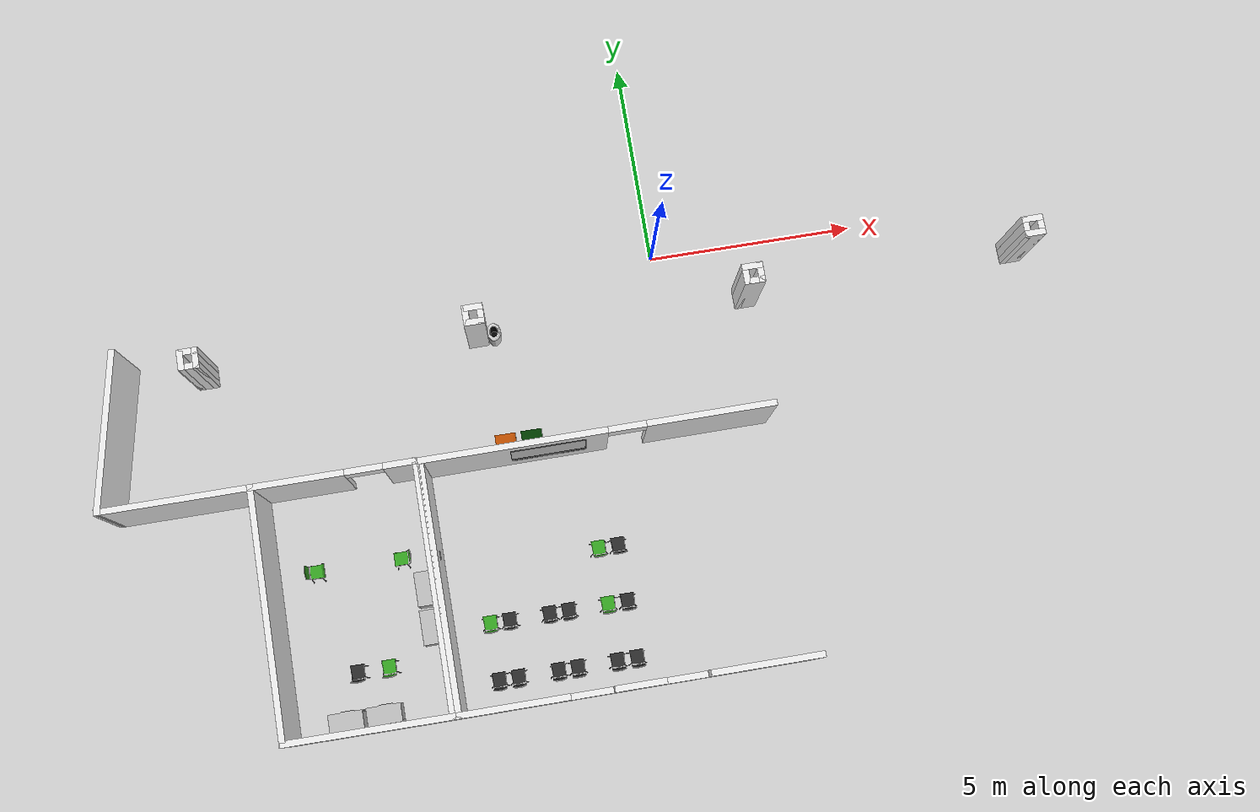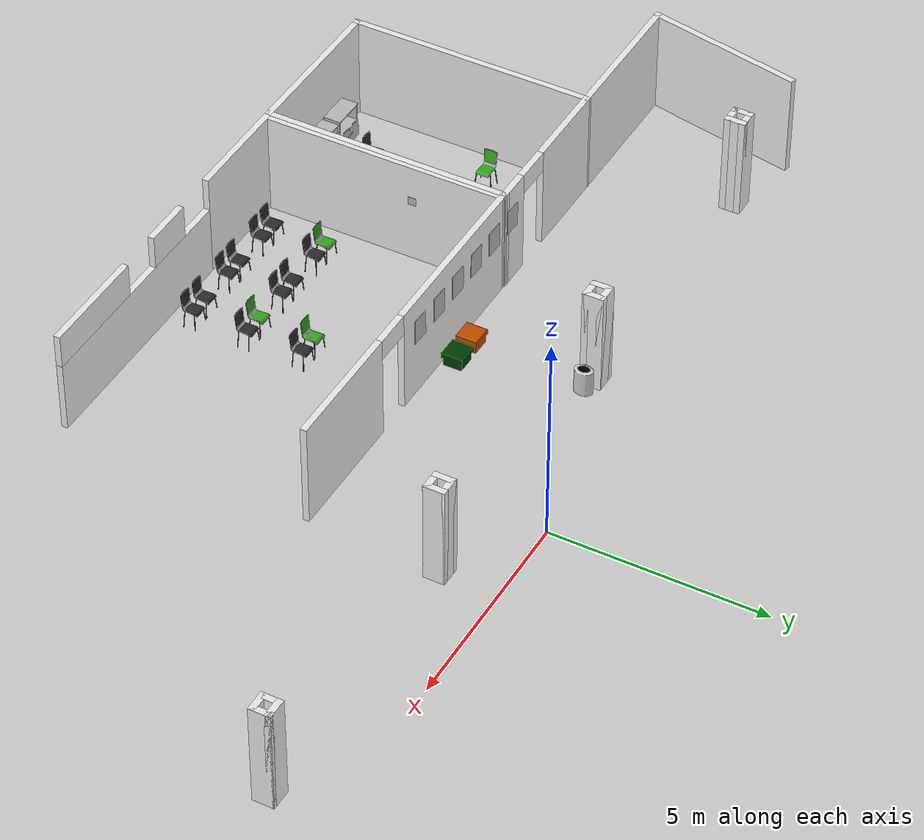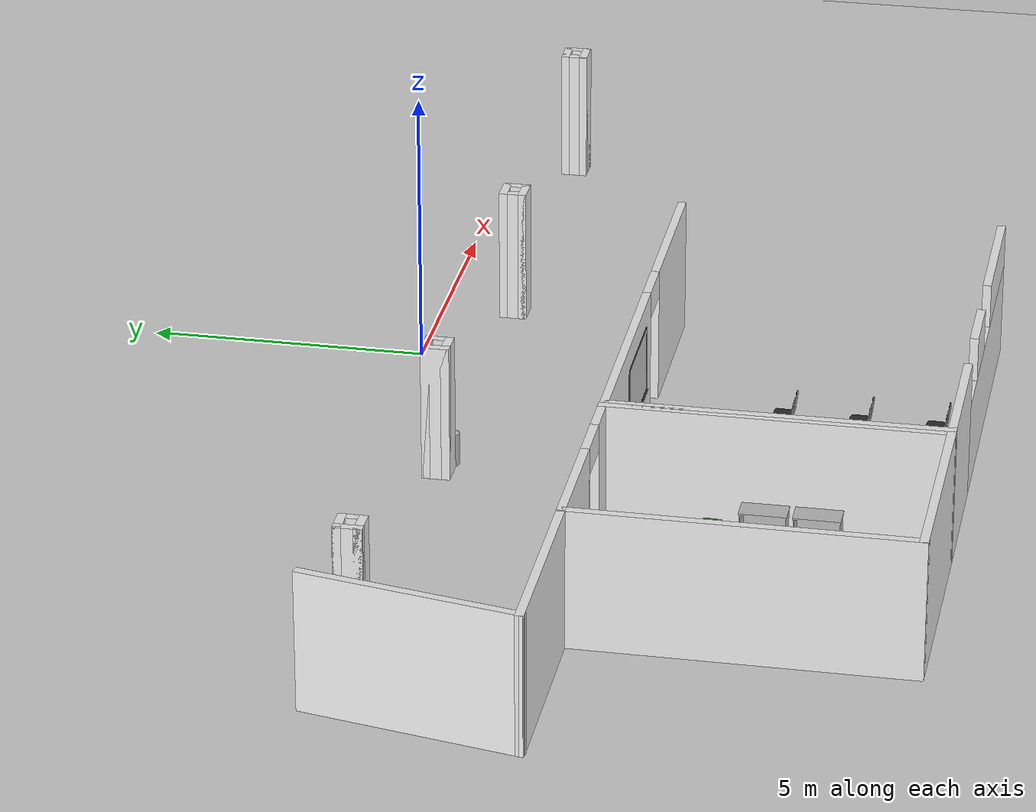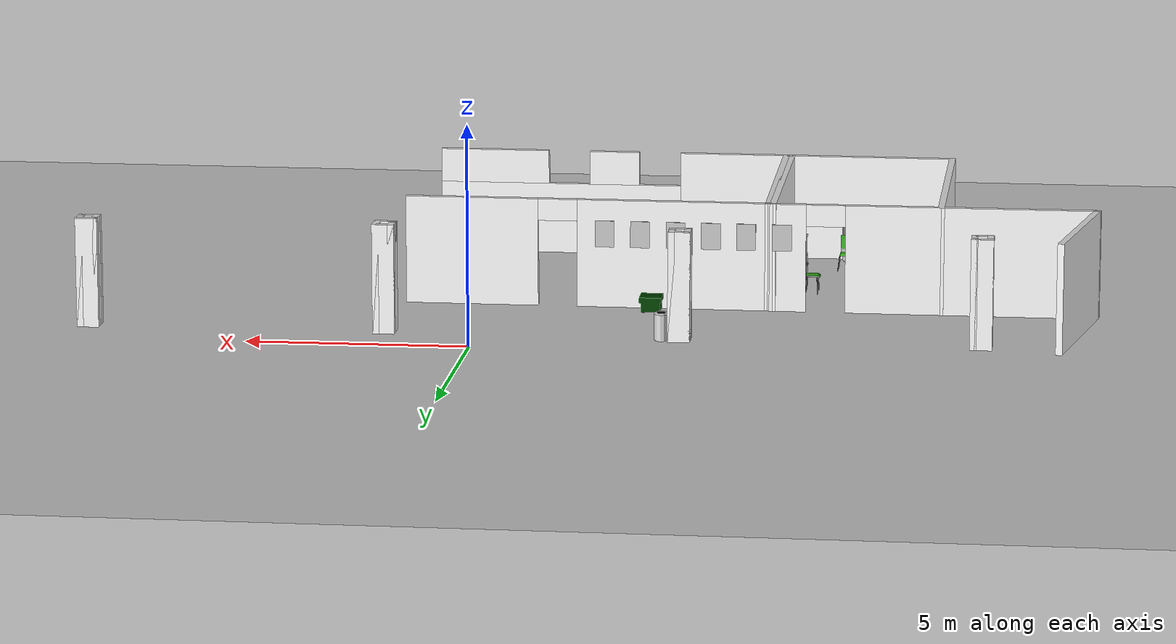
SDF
<sdf version="1.6">
 <world name="default">
  <model name="ground_plane">
   <static>1</static>
   <link name="link">
    <collision name="collision">
     <geometry><plane><normal>0 0 1</normal><size>100 100</size></plane></geometry>
     <surface><friction><ode><mu>100</mu><mu2>50</mu2></ode></friction></surface>
    </collision>
    <visual name="visual">
     <cast_shadows>0</cast_shadows>
     <geometry><plane><normal>0 0 1</normal><size>100 100</size></plane></geometry>
     <material>
      <script><uri>file://media/materials/scripts/gazebo.material</uri><name>Gazebo/Grey</name></script>
     </material>
    </visual>
   </link>
  </model>
  <model name="columns">
   <pose>-1.23086 -1.27462 0 0 -0 0</pose>
   <link name="Wall_337">
    <collision name="Wall_337_Collision">
     <geometry><box><size>0.5 0.15 2.5</size></box></geometry>
     <pose>0 0 1.25 0 -0 0</pose>
    </collision>
    <visual name="Wall_337_Visual">
     <pose>0 0 1.25 0 -0 0</pose>
     <geometry><box><size>0.5 0.15 2.5</size></box></geometry>
     <material>
      <script><uri>file://media/materials/scripts/gazebo.material</uri><name>Gazebo/White</name></script>
      <ambient>1 1 1 1</ambient>
     </material>
     <meta><layer>0</layer></meta>
    </visual>
    <pose>9.87053 0.009422 0 0 0 -1.5708</pose>
   </link>
   <link name="Wall_338">
    <collision name="Wall_338_Collision">
     <geometry><box><size>0.5 0.15 2.5</size></box></geometry>
     <pose>0 0 1.25 0 -0 0</pose>
    </collision>
    <visual name="Wall_338_Visual">
     <pose>0 0 1.25 0 -0 0</pose>
     <geometry><box><size>0.5 0.15 2.5</size></box></geometry>
     <material>
      <script><uri>file://media/materials/scripts/gazebo.material</uri><name>Gazebo/White</name></script>
      <ambient>1 1 1 1</ambient>
     </material>
     <meta><layer>0</layer></meta>
    </visual>
    <pose>10.0455 -0.165578 0 0 -0 0</pose>
   </link>
   <link name="Wall_339">
    <collision name="Wall_339_Collision">
     <geometry><box><size>0.5 0.15 2.5</size></box></geometry>
     <pose>0 0 1.25 0 -0 0</pose>
    </collision>
    <visual name="Wall_339_Visual">
     <pose>0 0 1.25 0 -0 0</pose>
     <geometry><box><size>0.5 0.15 2.5</size></box></geometry>
     <material>
      <script><uri>file://media/materials/scripts/gazebo.material</uri><name>Gazebo/White</name></script>
      <ambient>1 1 1 1</ambient>
     </material>
     <meta><layer>0</layer></meta>
    </visual>
    <pose>10.2205 0.009422 0 0 -0 1.5708</pose>
   </link>
   <link name="Wall_340">
    <collision name="Wall_340_Collision">
     <geometry><box><size>0.5 0.15 2.5</size></box></geometry>
     <pose>0 0 1.25 0 -0 0</pose>
    </collision>
    <visual name="Wall_340_Visual">
     <pose>0 0 1.25 0 -0 0</pose>
     <geometry><box><size>0.5 0.15 2.5</size></box></geometry>
     <material>
      <script><uri>file://media/materials/scripts/gazebo.material</uri><name>Gazebo/White</name></script>
      <ambient>1 1 1 1</ambient>
     </material>
     <meta><layer>0</layer></meta>
    </visual>
    <pose>10.0455 0.184422 0 0 -0 3.14159</pose>
   </link>
   <link name="Wall_342">
    <collision name="Wall_342_Collision">
     <geometry><box><size>0.5 0.15 2.5</size></box></geometry>
     <pose>0 0 1.25 0 -0 0</pose>
    </collision>
    <visual name="Wall_342_Visual">
     <pose>0 0 1.25 0 -0 0</pose>
     <geometry><box><size>0.5 0.15 2.5</size></box></geometry>
     <material>
      <script><uri>file://media/materials/scripts/gazebo.material</uri><name>Gazebo/White</name></script>
      <ambient>1 1 1 1</ambient>
     </material>
     <meta><layer>0</layer></meta>
    </visual>
    <pose>3.13524 -0.056002 0 0 0 -1.5708</pose>
   </link>
   <link name="Wall_343">
    <collision name="Wall_343_Collision">
     <geometry><box><size>0.5 0.15 2.5</size></box></geometry>
     <pose>0 0 1.25 0 -0 0</pose>
    </collision>
    <visual name="Wall_343_Visual">
     <pose>0 0 1.25 0 -0 0</pose>
     <geometry><box><size>0.5 0.15 2.5</size></box></geometry>
     <material>
      <script><uri>file://media/materials/scripts/gazebo.material</uri><name>Gazebo/White</name></script>
      <ambient>1 1 1 1</ambient>
     </material>
     <meta><layer>0</layer></meta>
    </visual>
    <pose>3.31024 -0.231003 0 0 -0 0</pose>
   </link>
   <link name="Wall_344">
    <collision name="Wall_344_Collision">
     <geometry><box><size>0.5 0.15 2.5</size></box></geometry>
     <pose>0 0 1.25 0 -0 0</pose>
    </collision>
    <visual name="Wall_344_Visual">
     <pose>0 0 1.25 0 -0 0</pose>
     <geometry><box><size>0.5 0.15 2.5</size></box></geometry>
     <material>
      <script><uri>file://media/materials/scripts/gazebo.material</uri><name>Gazebo/White</name></script>
      <ambient>1 1 1 1</ambient>
     </material>
     <meta><layer>0</layer></meta>
    </visual>
    <pose>3.48524 -0.056002 0 0 -0 1.5708</pose>
   </link>
   <link name="Wall_345">
    <collision name="Wall_345_Collision">
     <geometry><box><size>0.5 0.15 2.5</size></box></geometry>
     <pose>0 0 1.25 0 -0 0</pose>
    </collision>
    <visual name="Wall_345_Visual">
     <pose>0 0 1.25 0 -0 0</pose>
     <geometry><box><size>0.5 0.15 2.5</size></box></geometry>
     <material>
      <script><uri>file://media/materials/scripts/gazebo.material</uri><name>Gazebo/White</name></script>
      <ambient>1 1 1 1</ambient>
     </material>
     <meta><layer>0</layer></meta>
    </visual>
    <pose>3.31024 0.118997 0 0 -0 3.14159</pose>
   </link>
   <link name="Wall_350">
    <collision name="Wall_350_Collision">
     <geometry><box><size>0.5 0.15 2.5</size></box></geometry>
     <pose>0 0 1.25 0 -0 0</pose>
    </collision>
    <visual name="Wall_350_Visual">
     <pose>0 0 1.25 0 -0 0</pose>
     <geometry><box><size>0.5 0.15 2.5</size></box></geometry>
     <material>
      <script><uri>file://media/materials/scripts/gazebo.material</uri><name>Gazebo/White</name></script>
      <ambient>1 1 1 1</ambient>
     </material>
     <meta><layer>0</layer></meta>
    </visual>
    <pose>-3.34038 0.200077 0 0 -0 0</pose>
   </link>
   <link name="Wall_351">
    <collision name="Wall_351_Collision">
     <geometry><box><size>0.5 0.15 2.5</size></box></geometry>
     <pose>0 0 1.25 0 -0 0</pose>
    </collision>
    <visual name="Wall_351_Visual">
     <pose>0 0 1.25 0 -0 0</pose>
     <geometry><box><size>0.5 0.15 2.5</size></box></geometry>
     <material>
      <script><uri>file://media/materials/scripts/gazebo.material</uri><name>Gazebo/White</name></script>
      <ambient>1 1 1 1</ambient>
     </material>
     <meta><layer>0</layer></meta>
    </visual>
    <pose>-3.16538 0.025078 0 0 0 -1.5708</pose>
   </link>
   <link name="Wall_352">
    <collision name="Wall_352_Collision">
     <geometry><box><size>0.5 0.15 2.5</size></box></geometry>
     <pose>0 0 1.25 0 -0 0</pose>
    </collision>
    <visual name="Wall_352_Visual">
     <pose>0 0 1.25 0 -0 0</pose>
     <geometry><box><size>0.5 0.15 2.5</size></box></geometry>
     <material>
      <script><uri>file://media/materials/scripts/gazebo.material</uri><name>Gazebo/White</name></script>
      <ambient>1 1 1 1</ambient>
     </material>
     <meta><layer>0</layer></meta>
    </visual>
    <pose>-3.34038 -0.149923 0 0 -0 3.14159</pose>
   </link>
   <link name="Wall_353">
    <collision name="Wall_353_Collision">
     <geometry><box><size>0.5 0.15 2.5</size></box></geometry>
     <pose>0 0 1.25 0 -0 0</pose>
    </collision>
    <visual name="Wall_353_Visual">
     <pose>0 0 1.25 0 -0 0</pose>
     <geometry><box><size>0.5 0.15 2.5</size></box></geometry>
     <material>
      <script><uri>file://media/materials/scripts/gazebo.material</uri><name>Gazebo/White</name></script>
      <ambient>1 1 1 1</ambient>
     </material>
     <meta><layer>0</layer></meta>
    </visual>
    <pose>-3.51538 0.025078 0 0 -0 1.5708</pose>
   </link>
   <link name="Wall_355">
    <collision name="Wall_355_Collision">
     <geometry><box><size>0.5 0.15 2.5</size></box></geometry>
     <pose>0 0 1.25 0 -0 0</pose>
    </collision>
    <visual name="Wall_355_Visual">
     <pose>0 0 1.25 0 -0 0</pose>
     <geometry><box><size>0.5 0.15 2.5</size></box></geometry>
     <material>
      <script><uri>file://media/materials/scripts/gazebo.material</uri><name>Gazebo/White</name></script>
      <ambient>1 1 1 1</ambient>
     </material>
     <meta><layer>0</layer></meta>
    </visual>
    <pose>-10.2205 0.056002 0 0 0 -1.5708</pose>
   </link>
   <link name="Wall_356">
    <collision name="Wall_356_Collision">
     <geometry><box><size>0.5 0.15 2.5</size></box></geometry>
     <pose>0 0 1.25 0 -0 0</pose>
    </collision>
    <visual name="Wall_356_Visual">
     <pose>0 0 1.25 0 -0 0</pose>
     <geometry><box><size>0.5 0.15 2.5</size></box></geometry>
     <material>
      <script><uri>file://media/materials/scripts/gazebo.material</uri><name>Gazebo/White</name></script>
      <ambient>1 1 1 1</ambient>
     </material>
     <meta><layer>0</layer></meta>
    </visual>
    <pose>-10.0455 -0.118998 0 0 -0 0</pose>
   </link>
   <link name="Wall_357">
    <collision name="Wall_357_Collision">
     <geometry><box><size>0.5 0.15 2.5</size></box></geometry>
     <pose>0 0 1.25 0 -0 0</pose>
    </collision>
    <visual name="Wall_357_Visual">
     <pose>0 0 1.25 0 -0 0</pose>
     <geometry><box><size>0.5 0.15 2.5</size></box></geometry>
     <material>
      <script><uri>file://media/materials/scripts/gazebo.material</uri><name>Gazebo/White</name></script>
      <ambient>1 1 1 1</ambient>
     </material>
     <meta><layer>0</layer></meta>
    </visual>
    <pose>-9.87053 0.056002 0 0 -0 1.5708</pose>
   </link>
   <link name="Wall_358">
    <collision name="Wall_358_Collision">
     <geometry><box><size>0.5 0.15 2.5</size></box></geometry>
     <pose>0 0 1.25 0 -0 0</pose>
    </collision>
    <visual name="Wall_358_Visual">
     <pose>0 0 1.25 0 -0 0</pose>
     <geometry><box><size>0.5 0.15 2.5</size></box></geometry>
     <material>
      <script><uri>file://media/materials/scripts/gazebo.material</uri><name>Gazebo/White</name></script>
      <ambient>1 1 1 1</ambient>
     </material>
     <meta><layer>0</layer></meta>
    </visual>
    <pose>-10.0455 0.231003 0 0 -0 3.14159</pose>
   </link>
   <static>1</static>
  </model>
  <model name="ucu_basic_frame.world">
   <link name="Wall_187">
    <pose>-2.91004 -8.08571 0 0 0 -3.14</pose>
    <visual name="Wall_187_Visual_0">
     <pose>-2.67697 0 1.25 0 -0 0</pose>
     <geometry><box><size>3.06354 0.15 2.5</size></box></geometry>
     <material>
      <script><uri>file://media/materials/scripts/gazebo.material</uri><name>Gazebo/White</name></script>
      <ambient>1 1 1 1</ambient>
      <diffuse>1 1 1 1</diffuse>
      <specular>0 0 0 1</specular>
      <emissive>0 0 0 1</emissive>
     </material>
     <meta><layer>0</layer></meta>
    </visual>
    <visual name="Wall_187_Visual_2">
     <pose>-0.695201 0 2.25 0 -0 0</pose>
     <geometry><box><size>0.9 0.15 0.5</size></box></geometry>
     <material>
      <script><uri>file://media/materials/scripts/gazebo.material</uri><name>Gazebo/White</name></script>
      <ambient>1 1 1 1</ambient>
      <diffuse>1 1 1 1</diffuse>
      <specular>0 0 0 1</specular>
      <emissive>0 0 0 1</emissive>
     </material>
     <meta><layer>0</layer></meta>
    </visual>
    <visual name="Wall_187_Visual_1">
     <pose>1.98177 0 1.25 0 -0 0</pose>
     <geometry><box><size>4.45394 0.15 2.5</size></box></geometry>
     <material>
      <script><uri>file://media/materials/scripts/gazebo.material</uri><name>Gazebo/White</name></script>
      <ambient>1 1 1 1</ambient>
      <diffuse>1 1 1 1</diffuse>
      <specular>0 0 0 1</specular>
      <emissive>0 0 0 1</emissive>
     </material>
     <meta><layer>0</layer></meta>
    </visual>
    <collision name="Wall_187_Collision_0">
     <pose>-2.67697 0 1.25 0 -0 0</pose>
     <geometry><box><size>3.06354 0.15 2.5</size></box></geometry>
     <surface>
      <friction>
       <ode><mu>1</mu><mu2>1</mu2><fdir1>0 0 0</fdir1><slip1>0</slip1><slip2>0</slip2></ode>
       <torsional>
        <coefficient>1</coefficient>
        <patch_radius>0</patch_radius>
        <surface_radius>0</surface_radius>
        <use_patch_radius>1</use_patch_radius>
        <ode><slip>0</slip></ode>
       </torsional>
      </friction>
      <bounce><restitution_coefficient>0</restitution_coefficient><threshold>1e+06</threshold></bounce>
      <contact>
       <collide_without_contact>0</collide_without_contact>
       <collide_without_contact_bitmask>1</collide_without_contact_bitmask>
       <collide_bitmask>1</collide_bitmask>
       <ode>
        <soft_cfm>0</soft_cfm>
        <soft_erp>0.2</soft_erp>
        <kp>1e+13</kp>
        <kd>1</kd>
        <max_vel>0.01</max_vel>
        <min_depth>0</min_depth>
       </ode>
       <bullet>
        <split_impulse>1</split_impulse>
        <split_impulse_penetration_threshold>-0.01</split_impulse_penetration_threshold>
        <soft_cfm>0</soft_cfm>
        <soft_erp>0.2</soft_erp>
        <kp>1e+13</kp>
        <kd>1</kd>
       </bullet>
      </contact>
     </surface>
    </collision>
    <collision name="Wall_187_Collision_1">
     <pose>1.98177 0 1.25 0 -0 0</pose>
     <geometry><box><size>4.45394 0.15 2.5</size></box></geometry>
     <surface>
      <friction>
       <ode><mu>1</mu><mu2>1</mu2><fdir1>0 0 0</fdir1><slip1>0</slip1><slip2>0</slip2></ode>
       <torsional>
        <coefficient>1</coefficient>
        <patch_radius>0</patch_radius>
        <surface_radius>0</surface_radius>
        <use_patch_radius>1</use_patch_radius>
        <ode><slip>0</slip></ode>
       </torsional>
      </friction>
      <bounce><restitution_coefficient>0</restitution_coefficient><threshold>1e+06</threshold></bounce>
      <contact>
       <collide_without_contact>0</collide_without_contact>
       <collide_without_contact_bitmask>1</collide_without_contact_bitmask>
       <collide_bitmask>1</collide_bitmask>
       <ode>
        <soft_cfm>0</soft_cfm>
        <soft_erp>0.2</soft_erp>
        <kp>1e+13</kp>
        <kd>1</kd>
        <max_vel>0.01</max_vel>
        <min_depth>0</min_depth>
       </ode>
       <bullet>
        <split_impulse>1</split_impulse>
        <split_impulse_penetration_threshold>-0.01</split_impulse_penetration_threshold>
        <soft_cfm>0</soft_cfm>
        <soft_erp>0.2</soft_erp>
        <kp>1e+13</kp>
        <kd>1</kd>
       </bullet>
      </contact>
     </surface>
    </collision>
    <collision name="Wall_187_Collision_2">
     <pose>-0.695201 0 2.25 0 -0 0</pose>
     <geometry><box><size>0.9 0.15 0.5</size></box></geometry>
     <surface>
      <friction>
       <ode><mu>1</mu><mu2>1</mu2><fdir1>0 0 0</fdir1><slip1>0</slip1><slip2>0</slip2></ode>
       <torsional>
        <coefficient>1</coefficient>
        <patch_radius>0</patch_radius>
        <surface_radius>0</surface_radius>
        <use_patch_radius>1</use_patch_radius>
        <ode><slip>0</slip></ode>
       </torsional>
      </friction>
      <bounce><restitution_coefficient>0</restitution_coefficient><threshold>1e+06</threshold></bounce>
      <contact>
       <collide_without_contact>0</collide_without_contact>
       <collide_without_contact_bitmask>1</collide_without_contact_bitmask>
       <collide_bitmask>1</collide_bitmask>
       <ode>
        <soft_cfm>0</soft_cfm>
        <soft_erp>0.2</soft_erp>
        <kp>1e+13</kp>
        <kd>1</kd>
        <max_vel>0.01</max_vel>
        <min_depth>0</min_depth>
       </ode>
       <bullet>
        <split_impulse>1</split_impulse>
        <split_impulse_penetration_threshold>-0.01</split_impulse_penetration_threshold>
        <soft_cfm>0</soft_cfm>
        <soft_erp>0.2</soft_erp>
        <kp>1e+13</kp>
        <kd>1</kd>
       </bullet>
      </contact>
     </surface>
    </collision>
   </link>
   <link name="Wall_188">
    <pose>-7.05036 -11.0083 0 0 0 -1.56854</pose>
    <visual name="Wall_188_Visual">
     <pose>0 0 1.25 0 -0 0</pose>
     <geometry><box><size>5.98201 0.15 2.5</size></box></geometry>
     <material>
      <script><uri>file://media/materials/scripts/gazebo.material</uri><name>Gazebo/White</name></script>
      <ambient>0 1 0 1</ambient>
      <diffuse>1 1 1 1</diffuse>
      <specular>0 0 0 1</specular>
      <emissive>0 0 0 1</emissive>
     </material>
     <meta><layer>0</layer></meta>
    </visual>
    <collision name="Wall_188_Collision">
     <pose>0 0 1.25 0 -0 0</pose>
     <geometry><box><size>5.98201 0.15 2.5</size></box></geometry>
     <surface>
      <friction>
       <ode><mu>1</mu><mu2>1</mu2><fdir1>0 0 0</fdir1><slip1>0</slip1><slip2>0</slip2></ode>
       <torsional>
        <coefficient>1</coefficient>
        <patch_radius>0</patch_radius>
        <surface_radius>0</surface_radius>
        <use_patch_radius>1</use_patch_radius>
        <ode><slip>0</slip></ode>
       </torsional>
      </friction>
      <bounce><restitution_coefficient>0</restitution_coefficient><threshold>1e+06</threshold></bounce>
      <contact>
       <collide_without_contact>0</collide_without_contact>
       <collide_without_contact_bitmask>1</collide_without_contact_bitmask>
       <collide_bitmask>1</collide_bitmask>
       <ode>
        <soft_cfm>0</soft_cfm>
        <soft_erp>0.2</soft_erp>
        <kp>1e+13</kp>
        <kd>1</kd>
        <max_vel>0.01</max_vel>
        <min_depth>0</min_depth>
       </ode>
       <bullet>
        <split_impulse>1</split_impulse>
        <split_impulse_penetration_threshold>-0.01</split_impulse_penetration_threshold>
        <soft_cfm>0</soft_cfm>
        <soft_erp>0.2</soft_erp>
        <kp>1e+13</kp>
        <kd>1</kd>
       </bullet>
      </contact>
     </surface>
    </collision>
   </link>
   <link name="Wall_189">
    <pose>-2.90346 -13.9177 0 0 -0 0.00159</pose>
    <visual name="Wall_189_Visual_0">
     <pose>-2.9043 0 1.25 0 -0 0</pose>
     <geometry><box><size>2.62204 0.15 2.5</size></box></geometry>
     <material>
      <script><uri>file://media/materials/scripts/gazebo.material</uri><name>Gazebo/White</name></script>
      <ambient>1 1 1 1</ambient>
      <diffuse>1 1 1 1</diffuse>
      <specular>0 0 0 1</specular>
      <emissive>0 0 0 1</emissive>
     </material>
     <meta><layer>0</layer></meta>
    </visual>
    <visual name="Wall_189_Visual_1">
     <pose>1.31102 0 0.85 0 -0 0</pose>
     <geometry><box><size>5.8086 0.15 1.7</size></box></geometry>
     <material>
      <script><uri>file://media/materials/scripts/gazebo.material</uri><name>Gazebo/White</name></script>
      <ambient>1 1 1 1</ambient>
      <diffuse>1 1 1 1</diffuse>
      <specular>0 0 0 1</specular>
      <emissive>0 0 0 1</emissive>
     </material>
     <meta><layer>0</layer></meta>
    </visual>
    <visual name="Wall_189_Visual_2">
     <pose>0.003473 0 2.1 0 -0 0</pose>
     <geometry><box><size>1.19351 0.15 0.8</size></box></geometry>
     <material>
      <script><uri>file://media/materials/scripts/gazebo.material</uri><name>Gazebo/White</name></script>
      <ambient>1 1 1 1</ambient>
      <diffuse>1 1 1 1</diffuse>
      <specular>0 0 0 1</specular>
      <emissive>0 0 0 1</emissive>
     </material>
     <meta><layer>0</layer></meta>
    </visual>
    <visual name="Wall_189_Visual_3">
     <pose>2.90777 0 2.1 0 -0 0</pose>
     <geometry><box><size>2.6151 0.15 0.8</size></box></geometry>
     <material>
      <script><uri>file://media/materials/scripts/gazebo.material</uri><name>Gazebo/White</name></script>
      <ambient>1 1 1 1</ambient>
      <diffuse>1 1 1 1</diffuse>
      <specular>0 0 0 1</specular>
      <emissive>0 0 0 1</emissive>
     </material>
     <meta><layer>0</layer></meta>
    </visual>
    <collision name="Wall_189_Collision_0">
     <pose>-2.9043 0 1.25 0 -0 0</pose>
     <geometry><box><size>2.62204 0.15 2.5</size></box></geometry>
     <surface>
      <friction>
       <ode><mu>1</mu><mu2>1</mu2><fdir1>0 0 0</fdir1><slip1>0</slip1><slip2>0</slip2></ode>
       <torsional>
        <coefficient>1</coefficient>
        <patch_radius>0</patch_radius>
        <surface_radius>0</surface_radius>
        <use_patch_radius>1</use_patch_radius>
        <ode><slip>0</slip></ode>
       </torsional>
      </friction>
      <bounce><restitution_coefficient>0</restitution_coefficient><threshold>1e+06</threshold></bounce>
      <contact>
       <collide_without_contact>0</collide_without_contact>
       <collide_without_contact_bitmask>1</collide_without_contact_bitmask>
       <collide_bitmask>1</collide_bitmask>
       <ode>
        <soft_cfm>0</soft_cfm>
        <soft_erp>0.2</soft_erp>
        <kp>1e+13</kp>
        <kd>1</kd>
        <max_vel>0.01</max_vel>
        <min_depth>0</min_depth>
       </ode>
       <bullet>
        <split_impulse>1</split_impulse>
        <split_impulse_penetration_threshold>-0.01</split_impulse_penetration_threshold>
        <soft_cfm>0</soft_cfm>
        <soft_erp>0.2</soft_erp>
        <kp>1e+13</kp>
        <kd>1</kd>
       </bullet>
      </contact>
     </surface>
    </collision>
    <collision name="Wall_189_Collision_1">
     <pose>1.31102 0 0.85 0 -0 0</pose>
     <geometry><box><size>5.8086 0.15 1.7</size></box></geometry>
     <surface>
      <friction>
       <ode><mu>1</mu><mu2>1</mu2><fdir1>0 0 0</fdir1><slip1>0</slip1><slip2>0</slip2></ode>
       <torsional>
        <coefficient>1</coefficient>
        <patch_radius>0</patch_radius>
        <surface_radius>0</surface_radius>
        <use_patch_radius>1</use_patch_radius>
        <ode><slip>0</slip></ode>
       </torsional>
      </friction>
      <bounce><restitution_coefficient>0</restitution_coefficient><threshold>1e+06</threshold></bounce>
      <contact>
       <collide_without_contact>0</collide_without_contact>
       <collide_without_contact_bitmask>1</collide_without_contact_bitmask>
       <collide_bitmask>1</collide_bitmask>
       <ode>
        <soft_cfm>0</soft_cfm>
        <soft_erp>0.2</soft_erp>
        <kp>1e+13</kp>
        <kd>1</kd>
        <max_vel>0.01</max_vel>
        <min_depth>0</min_depth>
       </ode>
       <bullet>
        <split_impulse>1</split_impulse>
        <split_impulse_penetration_threshold>-0.01</split_impulse_penetration_threshold>
        <soft_cfm>0</soft_cfm>
        <soft_erp>0.2</soft_erp>
        <kp>1e+13</kp>
        <kd>1</kd>
       </bullet>
      </contact>
     </surface>
    </collision>
    <collision name="Wall_189_Collision_3">
     <pose>2.90777 0 2.1 0 -0 0</pose>
     <geometry><box><size>2.6151 0.15 0.8</size></box></geometry>
     <surface>
      <friction>
       <ode><mu>1</mu><mu2>1</mu2><fdir1>0 0 0</fdir1><slip1>0</slip1><slip2>0</slip2></ode>
       <torsional>
        <coefficient>1</coefficient>
        <patch_radius>0</patch_radius>
        <surface_radius>0</surface_radius>
        <use_patch_radius>1</use_patch_radius>
        <ode><slip>0</slip></ode>
       </torsional>
      </friction>
      <bounce><restitution_coefficient>0</restitution_coefficient><threshold>1e+06</threshold></bounce>
      <contact>
       <collide_without_contact>0</collide_without_contact>
       <collide_without_contact_bitmask>1</collide_without_contact_bitmask>
       <collide_bitmask>1</collide_bitmask>
       <ode>
        <soft_cfm>0</soft_cfm>
        <soft_erp>0.2</soft_erp>
        <kp>1e+13</kp>
        <kd>1</kd>
        <max_vel>0.01</max_vel>
        <min_depth>0</min_depth>
       </ode>
       <bullet>
        <split_impulse>1</split_impulse>
        <split_impulse_penetration_threshold>-0.01</split_impulse_penetration_threshold>
        <soft_cfm>0</soft_cfm>
        <soft_erp>0.2</soft_erp>
        <kp>1e+13</kp>
        <kd>1</kd>
       </bullet>
      </contact>
     </surface>
    </collision>
    <collision name="Wall_189_Collision_2">
     <pose>0.003473 0 2.1 0 -0 0</pose>
     <geometry><box><size>1.19351 0.15 0.8</size></box></geometry>
     <surface>
      <friction>
       <ode><mu>1</mu><mu2>1</mu2><fdir1>0 0 0</fdir1><slip1>0</slip1><slip2>0</slip2></ode>
       <torsional>
        <coefficient>1</coefficient>
        <patch_radius>0</patch_radius>
        <surface_radius>0</surface_radius>
        <use_patch_radius>1</use_patch_radius>
        <ode><slip>0</slip></ode>
       </torsional>
      </friction>
      <bounce><restitution_coefficient>0</restitution_coefficient><threshold>1e+06</threshold></bounce>
      <contact>
       <collide_without_contact>0</collide_without_contact>
       <collide_without_contact_bitmask>1</collide_without_contact_bitmask>
       <collide_bitmask>1</collide_bitmask>
       <ode>
        <soft_cfm>0</soft_cfm>
        <soft_erp>0.2</soft_erp>
        <kp>1e+13</kp>
        <kd>1</kd>
        <max_vel>0.01</max_vel>
        <min_depth>0</min_depth>
       </ode>
       <bullet>
        <split_impulse>1</split_impulse>
        <split_impulse_penetration_threshold>-0.01</split_impulse_penetration_threshold>
        <soft_cfm>0</soft_cfm>
        <soft_erp>0.2</soft_erp>
        <kp>1e+13</kp>
        <kd>1</kd>
       </bullet>
      </contact>
     </surface>
    </collision>
   </link>
   <link name="Wall_200">
    <pose>-7.1096 -8.08571 0 0 -0 3.01724</pose>
    <visual name="Wall_200_Visual">
     <pose>0 0 1.25 0 -0 0</pose>
     <geometry><box><size>0.256138 0.15 2.5</size></box></geometry>
     <material>
      <script><uri>file://media/materials/scripts/gazebo.material</uri><name>Gazebo/White</name></script>
      <ambient>1 1 1 1</ambient>
      <diffuse>1 1 1 1</diffuse>
      <specular>0 0 0 1</specular>
      <emissive>0 0 0 1</emissive>
     </material>
     <meta><layer>0</layer></meta>
    </visual>
    <collision name="Wall_200_Collision">
     <pose>0 0 1.25 0 -0 0</pose>
     <geometry><box><size>0.256138 0.15 2.5</size></box></geometry>
     <surface>
      <friction>
       <ode><mu>1</mu><mu2>1</mu2><fdir1>0 0 0</fdir1><slip1>0</slip1><slip2>0</slip2></ode>
       <torsional>
        <coefficient>1</coefficient>
        <patch_radius>0</patch_radius>
        <surface_radius>0</surface_radius>
        <use_patch_radius>1</use_patch_radius>
        <ode><slip>0</slip></ode>
       </torsional>
      </friction>
      <bounce><restitution_coefficient>0</restitution_coefficient><threshold>1e+06</threshold></bounce>
      <contact>
       <collide_without_contact>0</collide_without_contact>
       <collide_without_contact_bitmask>1</collide_without_contact_bitmask>
       <collide_bitmask>1</collide_bitmask>
       <ode>
        <soft_cfm>0</soft_cfm>
        <soft_erp>0.2</soft_erp>
        <kp>1e+13</kp>
        <kd>1</kd>
        <max_vel>0.01</max_vel>
        <min_depth>0</min_depth>
       </ode>
       <bullet>
        <split_impulse>1</split_impulse>
        <split_impulse_penetration_threshold>-0.01</split_impulse_penetration_threshold>
        <soft_cfm>0</soft_cfm>
        <soft_erp>0.2</soft_erp>
        <kp>1e+13</kp>
        <kd>1</kd>
       </bullet>
      </contact>
     </surface>
    </collision>
   </link>
   <link name="Wall_201">
    <pose>-7.16884 -11.0017 0 0 0 -1.57305</pose>
    <visual name="Wall_201_Visual">
     <pose>0 0 1.25 0 -0 0</pose>
     <geometry><box><size>5.99517 0.15 2.5</size></box></geometry>
     <material>
      <script><uri>file://media/materials/scripts/gazebo.material</uri><name>Gazebo/White</name></script>
      <ambient>1 1 1 1</ambient>
      <diffuse>1 1 1 1</diffuse>
      <specular>0 0 0 1</specular>
      <emissive>0 0 0 1</emissive>
     </material>
     <meta><layer>0</layer></meta>
    </visual>
    <collision name="Wall_201_Collision">
     <pose>0 0 1.25 0 -0 0</pose>
     <geometry><box><size>5.99517 0.15 2.5</size></box></geometry>
     <surface>
      <friction>
       <ode><mu>1</mu><mu2>1</mu2><fdir1>0 0 0</fdir1><slip1>0</slip1><slip2>0</slip2></ode>
       <torsional>
        <coefficient>1</coefficient>
        <patch_radius>0</patch_radius>
        <surface_radius>0</surface_radius>
        <use_patch_radius>1</use_patch_radius>
        <ode><slip>0</slip></ode>
       </torsional>
      </friction>
      <bounce><restitution_coefficient>0</restitution_coefficient><threshold>1e+06</threshold></bounce>
      <contact>
       <collide_without_contact>0</collide_without_contact>
       <collide_without_contact_bitmask>1</collide_without_contact_bitmask>
       <collide_bitmask>1</collide_bitmask>
       <ode>
        <soft_cfm>0</soft_cfm>
        <soft_erp>0.2</soft_erp>
        <kp>1e+13</kp>
        <kd>1</kd>
        <max_vel>0.01</max_vel>
        <min_depth>0</min_depth>
       </ode>
       <bullet>
        <split_impulse>1</split_impulse>
        <split_impulse_penetration_threshold>-0.01</split_impulse_penetration_threshold>
        <soft_cfm>0</soft_cfm>
        <soft_erp>0.2</soft_erp>
        <kp>1e+13</kp>
        <kd>1</kd>
       </bullet>
      </contact>
     </surface>
    </collision>
   </link>
   <link name="Wall_202">
    <pose>-9.0909 -13.9177 0 0 -0 3.13816</pose>
    <visual name="Wall_202_Visual">
     <pose>0 0 1.25 0 -0 0</pose>
     <geometry><box><size>3.98095 0.15 2.5</size></box></geometry>
     <material>
      <script><uri>file://media/materials/scripts/gazebo.material</uri><name>Gazebo/White</name></script>
      <ambient>1 1 1 1</ambient>
      <diffuse>1 1 1 1</diffuse>
      <specular>0 0 0 1</specular>
      <emissive>0 0 0 1</emissive>
     </material>
     <meta><layer>0</layer></meta>
    </visual>
    <collision name="Wall_202_Collision">
     <pose>0 0 1.25 0 -0 0</pose>
     <geometry><box><size>3.98095 0.15 2.5</size></box></geometry>
     <surface>
      <friction>
       <ode><mu>1</mu><mu2>1</mu2><fdir1>0 0 0</fdir1><slip1>0</slip1><slip2>0</slip2></ode>
       <torsional>
        <coefficient>1</coefficient>
        <patch_radius>0</patch_radius>
        <surface_radius>0</surface_radius>
        <use_patch_radius>1</use_patch_radius>
        <ode><slip>0</slip></ode>
       </torsional>
      </friction>
      <bounce><restitution_coefficient>0</restitution_coefficient><threshold>1e+06</threshold></bounce>
      <contact>
       <collide_without_contact>0</collide_without_contact>
       <collide_without_contact_bitmask>1</collide_without_contact_bitmask>
       <collide_bitmask>1</collide_bitmask>
       <ode>
        <soft_cfm>0</soft_cfm>
        <soft_erp>0.2</soft_erp>
        <kp>1e+13</kp>
        <kd>1</kd>
        <max_vel>0.01</max_vel>
        <min_depth>0</min_depth>
       </ode>
       <bullet>
        <split_impulse>1</split_impulse>
        <split_impulse_penetration_threshold>-0.01</split_impulse_penetration_threshold>
        <soft_cfm>0</soft_cfm>
        <soft_erp>0.2</soft_erp>
        <kp>1e+13</kp>
        <kd>1</kd>
       </bullet>
      </contact>
     </surface>
    </collision>
   </link>
   <link name="Wall_203">
    <pose>-11.0064 -10.9951 0 0 -0 1.56628</pose>
    <visual name="Wall_203_Visual">
     <pose>0 0 1.25 0 -0 0</pose>
     <geometry><box><size>5.98199 0.15 2.5</size></box></geometry>
     <material>
      <script><uri>file://media/materials/scripts/gazebo.material</uri><name>Gazebo/White</name></script>
      <ambient>1 1 1 1</ambient>
      <diffuse>1 1 1 1</diffuse>
      <specular>0 0 0 1</specular>
      <emissive>0 0 0 1</emissive>
     </material>
     <meta><layer>0</layer></meta>
    </visual>
    <collision name="Wall_203_Collision">
     <pose>0 0 1.25 0 -0 0</pose>
     <geometry><box><size>5.98199 0.15 2.5</size></box></geometry>
     <surface>
      <friction>
       <ode><mu>1</mu><mu2>1</mu2><fdir1>0 0 0</fdir1><slip1>0</slip1><slip2>0</slip2></ode>
       <torsional>
        <coefficient>1</coefficient>
        <patch_radius>0</patch_radius>
        <surface_radius>0</surface_radius>
        <use_patch_radius>1</use_patch_radius>
        <ode><slip>0</slip></ode>
       </torsional>
      </friction>
      <bounce><restitution_coefficient>0</restitution_coefficient><threshold>1e+06</threshold></bounce>
      <contact>
       <collide_without_contact>0</collide_without_contact>
       <collide_without_contact_bitmask>1</collide_without_contact_bitmask>
       <collide_bitmask>1</collide_bitmask>
       <ode>
        <soft_cfm>0</soft_cfm>
        <soft_erp>0.2</soft_erp>
        <kp>1e+13</kp>
        <kd>1</kd>
        <max_vel>0.01</max_vel>
        <min_depth>0</min_depth>
       </ode>
       <bullet>
        <split_impulse>1</split_impulse>
        <split_impulse_penetration_threshold>-0.01</split_impulse_penetration_threshold>
        <soft_cfm>0</soft_cfm>
        <soft_erp>0.2</soft_erp>
        <kp>1e+13</kp>
        <kd>1</kd>
       </bullet>
      </contact>
     </surface>
    </collision>
   </link>
   <link name="Wall_204">
    <pose>-9.07773 -8.07913 0 0 -0 0</pose>
    <visual name="Wall_204_Visual_0">
     <pose>-0.86786 0 1.25 0 -0 0</pose>
     <geometry><box><size>2.24559 0.15 2.5</size></box></geometry>
     <material>
      <script><uri>file://media/materials/scripts/gazebo.material</uri><name>Gazebo/White</name></script>
      <ambient>1 1 1 1</ambient>
      <diffuse>1 1 1 1</diffuse>
      <specular>0 0 0 1</specular>
      <emissive>0 0 0 1</emissive>
     </material>
     <meta><layer>0</layer></meta>
    </visual>
    <visual name="Wall_204_Visual_1">
     <pose>1.57279 0 1.25 0 -0 0</pose>
     <geometry><box><size>0.835719 0.15 2.5</size></box></geometry>
     <material>
      <script><uri>file://media/materials/scripts/gazebo.material</uri><name>Gazebo/White</name></script>
      <ambient>1 1 1 1</ambient>
      <diffuse>1 1 1 1</diffuse>
      <specular>0 0 0 1</specular>
      <emissive>0 0 0 1</emissive>
     </material>
     <meta><layer>0</layer></meta>
    </visual>
    <visual name="Wall_204_Visual_2">
     <pose>0.704935 0 2.25 0 -0 0</pose>
     <geometry><box><size>0.9 0.15 0.5</size></box></geometry>
     <material>
      <script><uri>file://media/materials/scripts/gazebo.material</uri><name>Gazebo/White</name></script>
      <ambient>1 1 1 1</ambient>
      <diffuse>1 1 1 1</diffuse>
      <specular>0 0 0 1</specular>
      <emissive>0 0 0 1</emissive>
     </material>
     <meta><layer>0</layer></meta>
    </visual>
    <collision name="Wall_204_Collision_0">
     <pose>-0.86786 0 1.25 0 -0 0</pose>
     <geometry><box><size>2.24559 0.15 2.5</size></box></geometry>
     <surface>
      <friction>
       <ode><mu>1</mu><mu2>1</mu2><fdir1>0 0 0</fdir1><slip1>0</slip1><slip2>0</slip2></ode>
       <torsional>
        <coefficient>1</coefficient>
        <patch_radius>0</patch_radius>
        <surface_radius>0</surface_radius>
        <use_patch_radius>1</use_patch_radius>
        <ode><slip>0</slip></ode>
       </torsional>
      </friction>
      <bounce><restitution_coefficient>0</restitution_coefficient><threshold>1e+06</threshold></bounce>
      <contact>
       <collide_without_contact>0</collide_without_contact>
       <collide_without_contact_bitmask>1</collide_without_contact_bitmask>
       <collide_bitmask>1</collide_bitmask>
       <ode>
        <soft_cfm>0</soft_cfm>
        <soft_erp>0.2</soft_erp>
        <kp>1e+13</kp>
        <kd>1</kd>
        <max_vel>0.01</max_vel>
        <min_depth>0</min_depth>
       </ode>
       <bullet>
        <split_impulse>1</split_impulse>
        <split_impulse_penetration_threshold>-0.01</split_impulse_penetration_threshold>
        <soft_cfm>0</soft_cfm>
        <soft_erp>0.2</soft_erp>
        <kp>1e+13</kp>
        <kd>1</kd>
       </bullet>
      </contact>
     </surface>
    </collision>
    <collision name="Wall_204_Collision_1">
     <pose>1.57279 0 1.25 0 -0 0</pose>
     <geometry><box><size>0.835719 0.15 2.5</size></box></geometry>
     <surface>
      <friction>
       <ode><mu>1</mu><mu2>1</mu2><fdir1>0 0 0</fdir1><slip1>0</slip1><slip2>0</slip2></ode>
       <torsional>
        <coefficient>1</coefficient>
        <patch_radius>0</patch_radius>
        <surface_radius>0</surface_radius>
        <use_patch_radius>1</use_patch_radius>
        <ode><slip>0</slip></ode>
       </torsional>
      </friction>
      <bounce><restitution_coefficient>0</restitution_coefficient><threshold>1e+06</threshold></bounce>
      <contact>
       <collide_without_contact>0</collide_without_contact>
       <collide_without_contact_bitmask>1</collide_without_contact_bitmask>
       <collide_bitmask>1</collide_bitmask>
       <ode>
        <soft_cfm>0</soft_cfm>
        <soft_erp>0.2</soft_erp>
        <kp>1e+13</kp>
        <kd>1</kd>
        <max_vel>0.01</max_vel>
        <min_depth>0</min_depth>
       </ode>
       <bullet>
        <split_impulse>1</split_impulse>
        <split_impulse_penetration_threshold>-0.01</split_impulse_penetration_threshold>
        <soft_cfm>0</soft_cfm>
        <soft_erp>0.2</soft_erp>
        <kp>1e+13</kp>
        <kd>1</kd>
       </bullet>
      </contact>
     </surface>
    </collision>
    <collision name="Wall_204_Collision_2">
     <pose>0.704935 0 2.25 0 -0 0</pose>
     <geometry><box><size>0.9 0.15 0.5</size></box></geometry>
     <surface>
      <friction>
       <ode><mu>1</mu><mu2>1</mu2><fdir1>0 0 0</fdir1><slip1>0</slip1><slip2>0</slip2></ode>
       <torsional>
        <coefficient>1</coefficient>
        <patch_radius>0</patch_radius>
        <surface_radius>0</surface_radius>
        <use_patch_radius>1</use_patch_radius>
        <ode><slip>0</slip></ode>
       </torsional>
      </friction>
      <bounce><restitution_coefficient>0</restitution_coefficient><threshold>1e+06</threshold></bounce>
      <contact>
       <collide_without_contact>0</collide_without_contact>
       <collide_without_contact_bitmask>1</collide_without_contact_bitmask>
       <collide_bitmask>1</collide_bitmask>
       <ode>
        <soft_cfm>0</soft_cfm>
        <soft_erp>0.2</soft_erp>
        <kp>1e+13</kp>
        <kd>1</kd>
        <max_vel>0.01</max_vel>
        <min_depth>0</min_depth>
       </ode>
       <bullet>
        <split_impulse>1</split_impulse>
        <split_impulse_penetration_threshold>-0.01</split_impulse_penetration_threshold>
        <soft_cfm>0</soft_cfm>
        <soft_erp>0.2</soft_erp>
        <kp>1e+13</kp>
        <kd>1</kd>
       </bullet>
      </contact>
     </surface>
    </collision>
   </link>
   <link name="Wall_211">
    <pose>-12.7573 -8.07913 0 0 -0 3.14159</pose>
    <visual name="Wall_211_Visual">
     <pose>0 0 1.25 0 -0 0</pose>
     <geometry><box><size>3.67855 0.15 2.5</size></box></geometry>
     <material>
      <script><uri>file://media/materials/scripts/gazebo.material</uri><name>Gazebo/White</name></script>
      <ambient>1 1 1 1</ambient>
      <diffuse>1 1 1 1</diffuse>
      <specular>0 0 0 1</specular>
      <emissive>0 0 0 1</emissive>
     </material>
     <meta><layer>0</layer></meta>
    </visual>
    <collision name="Wall_211_Collision">
     <pose>0 0 1.25 0 -0 0</pose>
     <geometry><box><size>3.67855 0.15 2.5</size></box></geometry>
     <surface>
      <friction>
       <ode><mu>1</mu><mu2>1</mu2><fdir1>0 0 0</fdir1><slip1>0</slip1><slip2>0</slip2></ode>
       <torsional>
        <coefficient>1</coefficient>
        <patch_radius>0</patch_radius>
        <surface_radius>0</surface_radius>
        <use_patch_radius>1</use_patch_radius>
        <ode><slip>0</slip></ode>
       </torsional>
      </friction>
      <bounce><restitution_coefficient>0</restitution_coefficient><threshold>1e+06</threshold></bounce>
      <contact>
       <collide_without_contact>0</collide_without_contact>
       <collide_without_contact_bitmask>1</collide_without_contact_bitmask>
       <collide_bitmask>1</collide_bitmask>
       <ode>
        <soft_cfm>0</soft_cfm>
        <soft_erp>0.2</soft_erp>
        <kp>1e+13</kp>
        <kd>1</kd>
        <max_vel>0.01</max_vel>
        <min_depth>0</min_depth>
       </ode>
       <bullet>
        <split_impulse>1</split_impulse>
        <split_impulse_penetration_threshold>-0.01</split_impulse_penetration_threshold>
        <soft_cfm>0</soft_cfm>
        <soft_erp>0.2</soft_erp>
        <kp>1e+13</kp>
        <kd>1</kd>
       </bullet>
      </contact>
     </surface>
    </collision>
   </link>
   <link name="Wall_215">
    <pose>-14.1457 -6.25128 0 0 -0 1.36809</pose>
    <visual name="Wall_215_Visual">
     <pose>0 0 1.25 0 -0 0</pose>
     <geometry><box><size>3.88211 0.15 2.5</size></box></geometry>
     <material>
      <script><uri>file://media/materials/scripts/gazebo.material</uri><name>Gazebo/White</name></script>
      <ambient>1 1 1 1</ambient>
      <diffuse>1 1 1 1</diffuse>
      <specular>0 0 0 1</specular>
      <emissive>0 0 0 1</emissive>
     </material>
     <meta><layer>0</layer></meta>
    </visual>
    <collision name="Wall_215_Collision">
     <pose>0 0 1.25 0 -0 0</pose>
     <geometry><box><size>3.88211 0.15 2.5</size></box></geometry>
     <surface>
      <friction>
       <ode><mu>1</mu><mu2>1</mu2><fdir1>0 0 0</fdir1><slip1>0</slip1><slip2>0</slip2></ode>
       <torsional>
        <coefficient>1</coefficient>
        <patch_radius>0</patch_radius>
        <surface_radius>0</surface_radius>
        <use_patch_radius>1</use_patch_radius>
        <ode><slip>0</slip></ode>
       </torsional>
      </friction>
      <bounce><restitution_coefficient>0</restitution_coefficient><threshold>1e+06</threshold></bounce>
      <contact>
       <collide_without_contact>0</collide_without_contact>
       <collide_without_contact_bitmask>1</collide_without_contact_bitmask>
       <collide_bitmask>1</collide_bitmask>
       <ode>
        <soft_cfm>0</soft_cfm>
        <soft_erp>0.2</soft_erp>
        <kp>1e+13</kp>
        <kd>1</kd>
        <max_vel>0.01</max_vel>
        <min_depth>0</min_depth>
       </ode>
       <bullet>
        <split_impulse>1</split_impulse>
        <split_impulse_penetration_threshold>-0.01</split_impulse_penetration_threshold>
        <soft_cfm>0</soft_cfm>
        <soft_erp>0.2</soft_erp>
        <kp>1e+13</kp>
        <kd>1</kd>
       </bullet>
      </contact>
     </surface>
    </collision>
   </link>
   <static>1</static>
   <pose>0.7577 3.6363 0 0 -0 0</pose>
  </model>
  <include>
   <uri>model://robert_gazebo/models/locker_008</uri>
   <name>locker_009_1</name>
   <pose>-6.71 -7.24 0.45 0 0 -1.57</pose>
  </include>
  <include>
   <uri>model://robert_gazebo/models/locker_008</uri>
   <name>locker_009_2</name>
   <pose>-6.71 -8.15 0.45 0 0 -1.57</pose>
  </include>
  <include>
   <uri>model://robert_gazebo/models/locker_008</uri>
   <name>locker_009_3</name>
   <pose>-8.98 -10 0.45 0 0 -3.14</pose>
  </include>
  <include>
   <uri>model://robert_gazebo/models/locker_008</uri>
   <name>locker_009_4</name>
   <pose>-8.08 -9.985 0.45 0 0 -3.14</pose>
  </include>
  <include>
   <uri>model://robert_gazebo/models/pictures/p9_adrian_slywotzky</uri>
   <name>p9_adrian_slywotzky</name>
   <pose>-2.55 -4.35 1.72 0 0 -0.02</pose>
  </include>
  <include>
   <uri>model://robert_gazebo/models/pictures/p10_bohdan_hawrylyshyn</uri>
   <name>p10_bohdan_hawrylyshyn</name>
   <pose>-3.36 -4.35 1.72 0 0 -0.02</pose>
  </include>
  <include>
   <uri>model://robert_gazebo/models/pictures/p11_sheryl_sandberg</uri>
   <name>p11_sheryl_sandberg</name>
   <pose>-4.18 -4.35 1.72 0 0 -0.02</pose>
  </include>
  <include>
   <uri>model://robert_gazebo/models/pictures/p12_donald_knuth</uri>
   <name>p12_donald_knuth</name>
   <pose>-4.99 -4.35 1.72 0 0 -0.02</pose>
  </include>
  <include>
   <uri>model://robert_gazebo/models/pictures/p13_borys_gudziak</uri>
   <name>p13_borys_gudziak</name>
   <pose>-5.8 -4.35 1.72 0 0 -0.02</pose>
  </include>
  <include>
   <uri>model://robert_gazebo/models/pictures/p14_oscar_wilde</uri>
   <name>p14_oscar_wilde</name>
   <pose>-6.62 -4.35 1.72 0 0 -0.02</pose>
  </include>
  <include>
   <uri>model://robert_gazebo/models/dump</uri>
   <name>dump_2</name>
   <pose>-4.16 -1.32 0.28 0 0 -1.57</pose>
  </include>
  <include>
   <uri>model://robert_gazebo/models/puffy/green</uri>
   <name>puffy_green_2</name>
   <pose>-3.65 -4.07 0.2 0 0 0</pose>
  </include>
  <include>
   <uri>model://robert_gazebo/models/puffy/orange</uri>
   <name>puffy_orange_2</name>
   <pose>-4.29 -4.07 0.2 0 0 0</pose>
  </include>
  <include>
   <uri>model://robert_gazebo/models/classroom_chair_grey</uri>
   <name>classroom_chair_008_1_2_1</name>
   <pose>-2.03 -6.94 0.445 0 0 3.14</pose>
  </include>
  <include>
   <uri>model://robert_gazebo/models/classroom_chair_green</uri>
   <name>classroom_chair_008_1_2_2</name>
   <pose>-2.5 -6.94 0.445 0 0 3.14</pose>
  </include>
  <include>
   <uri>model://robert_gazebo/models/classroom_chair_grey</uri>
   <name>classroom_chair_008_2_3_1</name>
   <pose>-2.03 -8.29 0.445 0 0 3.14</pose>
  </include>
  <include>
   <uri>model://robert_gazebo/models/classroom_chair_green</uri>
   <name>classroom_chair_008_2_3_2</name>
   <pose>-2.5 -8.29 0.445 0 0 3.14</pose>
  </include>
  <include>
   <uri>model://robert_gazebo/models/classroom_chair_grey</uri>
   <name>classroom_chair_008_2_4_1</name>
   <pose>-3.45 -8.29 0.445 0 0 3.14</pose>
  </include>
  <include>
   <uri>model://robert_gazebo/models/classroom_chair_grey</uri>
   <name>classroom_chair_008_2_4_2</name>
   <pose>-3.91 -8.29 0.445 0 0 3.14</pose>
  </include>
  <include>
   <uri>model://robert_gazebo/models/classroom_chair_grey</uri>
   <name>classroom_chair_008_2_5_1</name>
   <pose>-4.87 -8.29 0.445 0 0 3.14</pose>
  </include>
  <include>
   <uri>model://robert_gazebo/models/classroom_chair_green</uri>
   <name>classroom_chair_008_2_5_2</name>
   <pose>-5.33 -8.29 0.445 0 0 3.14</pose>
  </include>
  <include>
   <uri>model://robert_gazebo/models/classroom_chair_grey</uri>
   <name>classroom_chair_008_3_3_1</name>
   <pose>-2.03 -9.64 0.445 0 0 3.14</pose>
  </include>
  <include>
   <uri>model://robert_gazebo/models/classroom_chair_grey</uri>
   <name>classroom_chair_008_3_3_2</name>
   <pose>-2.5 -9.64 0.445 0 0 3.14</pose>
  </include>
  <include>
   <uri>model://robert_gazebo/models/classroom_chair_grey</uri>
   <name>classroom_chair_008_2_4_1</name>
   <pose>-3.45 -9.64 0.445 0 0 3.14</pose>
  </include>
  <include>
   <uri>model://robert_gazebo/models/classroom_chair_grey</uri>
   <name>classroom_chair_008_2_4_2</name>
   <pose>-3.91 -9.64 0.445 0 0 3.14</pose>
  </include>
  <include>
   <uri>model://robert_gazebo/models/classroom_chair_grey</uri>
   <name>classroom_chair_008_2_5_1</name>
   <pose>-4.87 -9.64 0.445 0 0 3.14</pose>
  </include>
  <include>
   <uri>model://robert_gazebo/models/classroom_chair_grey</uri>
   <name>classroom_chair_008_2_5_2</name>
   <pose>-5.33 -9.64 0.445 0 0 3.14</pose>
  </include>
  <include>
   <uri>model://robert_gazebo/models/classroom_chair_green</uri>
   <name>classroom_chair_009_1</name>
   <pose>-9.26 -6.4 0.445 0 0 1.57</pose>
  </include>
  <include>
   <uri>model://robert_gazebo/models/classroom_chair_grey</uri>
   <name>classroom_chair_009_2</name>
   <pose>-8.6 -8.92 0.445 0 0 3.14</pose>
  </include>
  <include>
   <uri>model://robert_gazebo/models/classroom_chair_green</uri>
   <name>classroom_chair_009_3</name>
   <pose>-7.17 -6.41 0.445 0 0 -1.57</pose>
  </include>
  <include>
   <uri>model://robert_gazebo/models/classroom_chair_green</uri>
   <name>classroom_chair_009_4</name>
   <pose>-7.85 -8.92 0.445 0 0 3.14</pose>
  </include>
  <include>
   <uri>model://robert_gazebo/models/board_008</uri>
   <name>board_008_1</name>
   <pose>-3.31979 -4.53449 1.46 0 0 -1.57</pose>
  </include>
  <include>
   <uri>model://robert_gazebo/models/qr/008</uri>
   <name>qr_008</name>
   <pose>-6.21 -6.6 1.6 0 0 1.57</pose>
  </include>
 </world>
</sdf>
